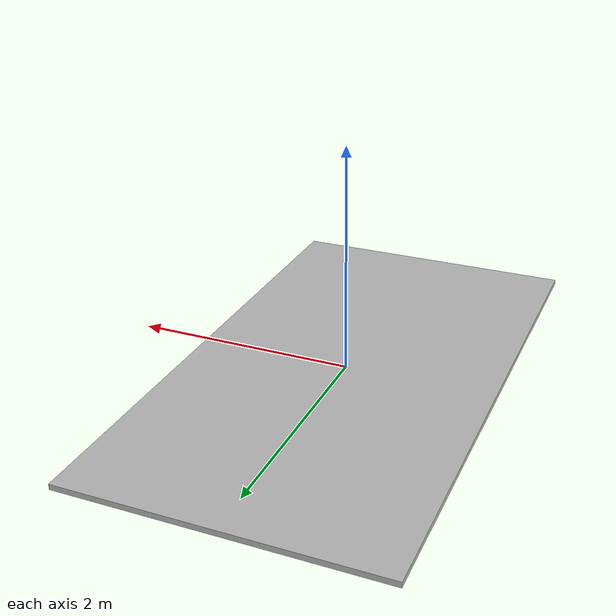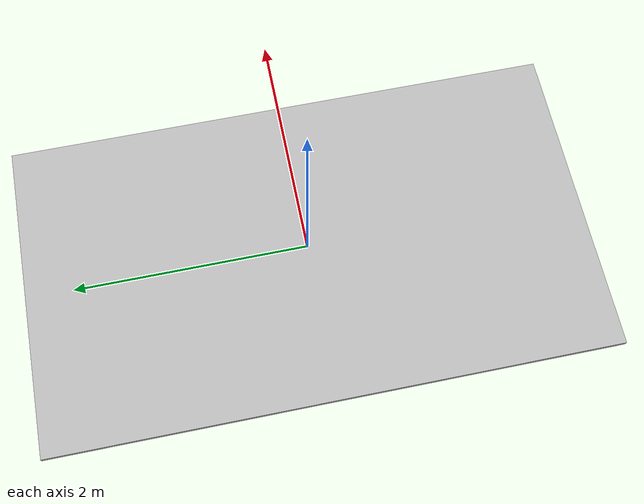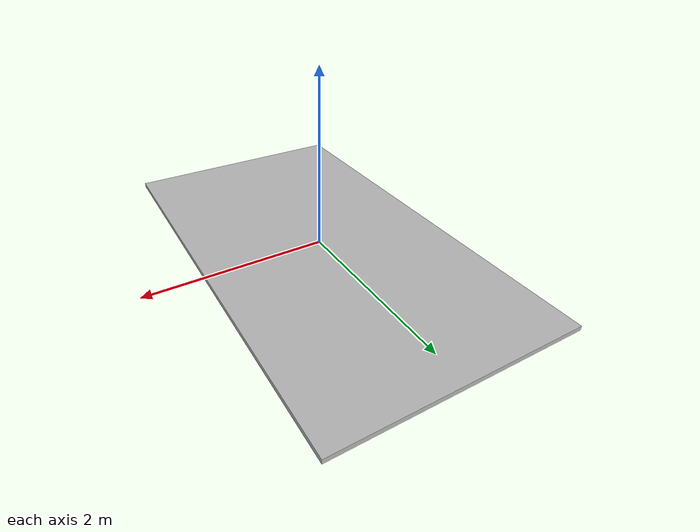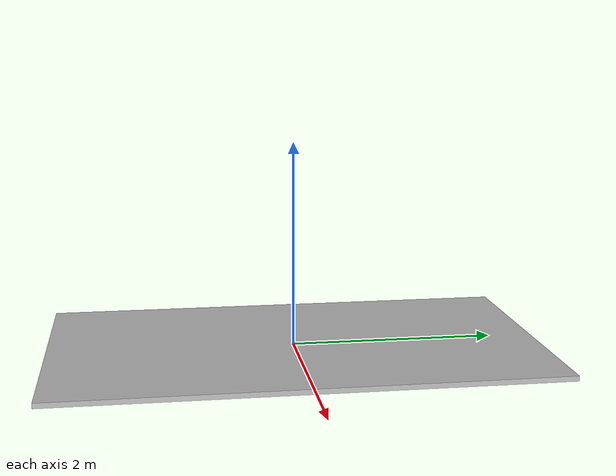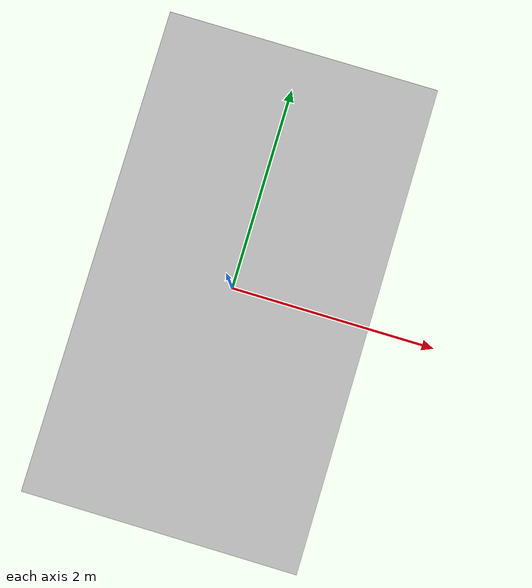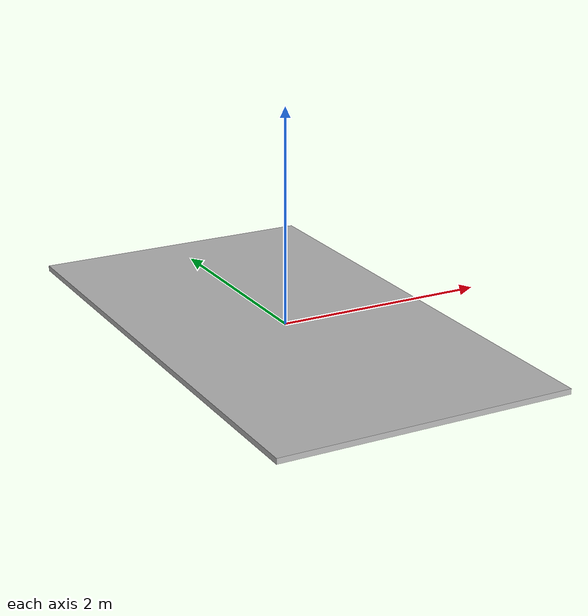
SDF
<?xml version="1.0" ?>
<sdf version="1.5">
  <model name="skyline4">
    <static>true</static>
    <link name="body">
      <pose>0 0 0 0 0 0</pose>
      <visual name="visual">
	<geometry>
	  <box>
	    <size>2.7 4.8 0.05</size>
	  </box>
	</geometry>
	<material>
	  <script>
            <uri>model://skyline4</uri>
            <name>FutureCity/Diffuse</name>
          </script>
	</material>
      </visual>
    </link>
  </model>
</sdf>
